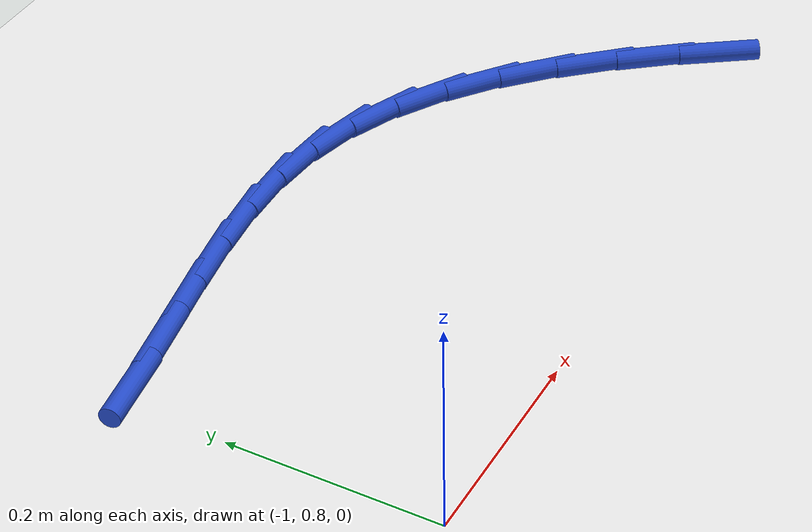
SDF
<sdf version="1.6">
 <world name="default">
  <model name="ground_plane">
   <static>1</static>
   <link name="link">
    <collision name="collision">
     <geometry><plane><normal>0 0 1</normal><size>100 100</size></plane></geometry>
     <surface><friction><ode><mu>100</mu><mu2>50</mu2></ode></friction></surface>
    </collision>
    <visual name="visual">
     <cast_shadows>0</cast_shadows>
     <geometry><plane><normal>0 0 1</normal><size>100 100</size></plane></geometry>
     <material>
      <script><uri>file://media/materials/scripts/gazebo.material</uri><name>Gazebo/WhiteGlow</name></script>
     </material>
    </visual>
   </link>
  </model>
  <model name="line">
   <link name="link_15">
    <pose>-0.31558912340277917 0.8576432344980603 0.01 0 1.57 -0.9722400191504887</pose>
    <collision name="collision">
     <geometry><cylinder><radius>0.01</radius><length>0.08</length></cylinder></geometry>
    </collision>
    <visual name="visual">
     <material>
      <script><name>Gazebo/Blue</name><uri>file://media/materials/scripts/gazebo.material</uri></script>
     </material>
     <geometry><cylinder><radius>0.01</radius><length>0.08</length></cylinder></geometry>
    </visual>
   </link>
   <link name="link_16">
    <pose>-0.3510268884515002 0.9096032815169346 0.01 0 1.57 -0.9141835111246677</pose>
    <collision name="collision">
     <geometry><cylinder><radius>0.01</radius><length>0.08</length></cylinder></geometry>
    </collision>
    <visual name="visual">
     <material>
      <script><name>Gazebo/Blue</name><uri>file://media/materials/scripts/gazebo.material</uri></script>
     </material>
     <geometry><cylinder><radius>0.01</radius><length>0.08</length></cylinder></geometry>
    </visual>
   </link>
   <link name="link_17">
    <pose>-0.38825781891241273 0.9579117428614743 0.01 0 1.57 -0.844133288874837</pose>
    <collision name="collision">
     <geometry><cylinder><radius>0.01</radius><length>0.08</length></cylinder></geometry>
    </collision>
    <visual name="visual">
     <material>
      <script><name>Gazebo/Blue</name><uri>file://media/materials/scripts/gazebo.material</uri></script>
     </material>
     <geometry><cylinder><radius>0.01</radius><length>0.08</length></cylinder></geometry>
    </visual>
   </link>
   <link name="link_18">
    <pose>-0.42734046561872957 1.0018778877782244 0.01 0 1.57 -0.7596323311256612</pose>
    <collision name="collision">
     <geometry><cylinder><radius>0.01</radius><length>0.08</length></cylinder></geometry>
    </collision>
    <visual name="visual">
     <material>
      <script><name>Gazebo/Blue</name><uri>file://media/materials/scripts/gazebo.material</uri></script>
     </material>
     <geometry><cylinder><radius>0.01</radius><length>0.08</length></cylinder></geometry>
    </visual>
   </link>
   <link name="link_19">
    <pose>-0.4683333794036637 1.0408109855137309 0.01 0 1.57 -0.6580579063487556</pose>
    <collision name="collision">
     <geometry><cylinder><radius>0.01</radius><length>0.08</length></cylinder></geometry>
    </collision>
    <visual name="visual">
     <material>
      <script><name>Gazebo/Blue</name><uri>file://media/materials/scripts/gazebo.material</uri></script>
     </material>
     <geometry><cylinder><radius>0.01</radius><length>0.08</length></cylinder></geometry>
    </visual>
   </link>
   <link name="link_20">
    <pose>-0.5112951111004279 1.0740203053145392 0.01 0 1.57 -0.5371664872411773</pose>
    <collision name="collision">
     <geometry><cylinder><radius>0.01</radius><length>0.08</length></cylinder></geometry>
    </collision>
    <visual name="visual">
     <material>
      <script><name>Gazebo/Blue</name><uri>file://media/materials/scripts/gazebo.material</uri></script>
     </material>
     <geometry><cylinder><radius>0.01</radius><length>0.08</length></cylinder></geometry>
    </visual>
   </link>
   <link name="link_21">
    <pose>-0.5562842115422353 1.1008151164271947 0.01 0 1.57 -0.3961475107143429</pose>
    <collision name="collision">
     <geometry><cylinder><radius>0.01</radius><length>0.08</length></cylinder></geometry>
    </collision>
    <visual name="visual">
     <material>
      <script><name>Gazebo/Blue</name><uri>file://media/materials/scripts/gazebo.material</uri></script>
     </material>
     <geometry><cylinder><radius>0.01</radius><length>0.08</length></cylinder></geometry>
    </visual>
   </link>
   <link name="link_22">
    <pose>-0.6033592315622984 1.1205046880982432 0.01 0 1.57 -0.23747426644378727</pose>
    <collision name="collision">
     <geometry><cylinder><radius>0.01</radius><length>0.08</length></cylinder></geometry>
    </collision>
    <visual name="visual">
     <material>
      <script><name>Gazebo/Blue</name><uri>file://media/materials/scripts/gazebo.material</uri></script>
     </material>
     <geometry><cylinder><radius>0.01</radius><length>0.08</length></cylinder></geometry>
    </visual>
   </link>
   <link name="link_23">
    <pose>-0.6525771511617 1.132417460310275 0.01 0 1.57 -0.08448729225068836</pose>
    <collision name="collision">
     <geometry><cylinder><radius>0.01</radius><length>0.08</length></cylinder></geometry>
    </collision>
    <visual name="visual">
     <material>
      <script><name>Gazebo/Blue</name><uri>file://media/materials/scripts/gazebo.material</uri></script>
     </material>
     <geometry><cylinder><radius>0.01</radius><length>0.08</length></cylinder></geometry>
    </visual>
   </link>
   <link name="link_24">
    <pose>-0.7039225186963878 1.136765842709658 0.01 0 1.57 0.03312193813509977</pose>
    <collision name="collision">
     <geometry><cylinder><radius>0.01</radius><length>0.08</length></cylinder></geometry>
    </collision>
    <visual name="visual">
     <material>
      <script><name>Gazebo/Blue</name><uri>file://media/materials/scripts/gazebo.material</uri></script>
     </material>
     <geometry><cylinder><radius>0.01</radius><length>0.08</length></cylinder></geometry>
    </visual>
   </link>
   <link name="link_25">
    <pose>-0.7572786309666527 1.1349979383119166 0.01 0 1.57 0.11433959773328366</pose>
    <collision name="collision">
     <geometry><cylinder><radius>0.01</radius><length>0.08</length></cylinder></geometry>
    </collision>
    <visual name="visual">
     <material>
      <script><name>Gazebo/Blue</name><uri>file://media/materials/scripts/gazebo.material</uri></script>
     </material>
     <geometry><cylinder><radius>0.01</radius><length>0.08</length></cylinder></geometry>
    </visual>
   </link>
   <link name="link_26">
    <pose>-0.8125212464573185 1.1286538491777043 0.01 0 1.57 0.1630888428173931</pose>
    <collision name="collision">
     <geometry><cylinder><radius>0.01</radius><length>0.08</length></cylinder></geometry>
    </collision>
    <visual name="visual">
     <material>
      <script><name>Gazebo/Blue</name><uri>file://media/materials/scripts/gazebo.material</uri></script>
     </material>
     <geometry><cylinder><radius>0.01</radius><length>0.08</length></cylinder></geometry>
    </visual>
   </link>
   <link name="link_27">
    <pose>-0.8695261236532092 1.1192736773676755 0.01 0 1.57 0.1833804747244442</pose>
    <collision name="collision">
     <geometry><cylinder><radius>0.01</radius><length>0.08</length></cylinder></geometry>
    </collision>
    <visual name="visual">
     <material>
      <script><name>Gazebo/Blue</name><uri>file://media/materials/scripts/gazebo.material</uri></script>
     </material>
     <geometry><cylinder><radius>0.01</radius><length>0.08</length></cylinder></geometry>
    </visual>
   </link>
   <link name="link_28">
    <pose>-0.928169021039148 1.1083975249424824 0.01 0 1.57 0.17815459510046344</pose>
    <collision name="collision">
     <geometry><cylinder><radius>0.01</radius><length>0.08</length></cylinder></geometry>
    </collision>
    <visual name="visual">
     <material>
      <script><name>Gazebo/Blue</name><uri>file://media/materials/scripts/gazebo.material</uri></script>
     </material>
     <geometry><cylinder><radius>0.01</radius><length>0.08</length></cylinder></geometry>
    </visual>
   </link>
   <link name="link_29">
    <pose>-0.988325697099959 1.097565493962779 0.01 0 1.57 0.14914220625272948</pose>
    <collision name="collision">
     <geometry><cylinder><radius>0.01</radius><length>0.08</length></cylinder></geometry>
    </collision>
    <visual name="visual">
     <material>
      <script><name>Gazebo/Blue</name><uri>file://media/materials/scripts/gazebo.material</uri></script>
     </material>
     <geometry><cylinder><radius>0.01</radius><length>0.08</length></cylinder></geometry>
    </visual>
   </link>
  </model>
 </world>
</sdf>
